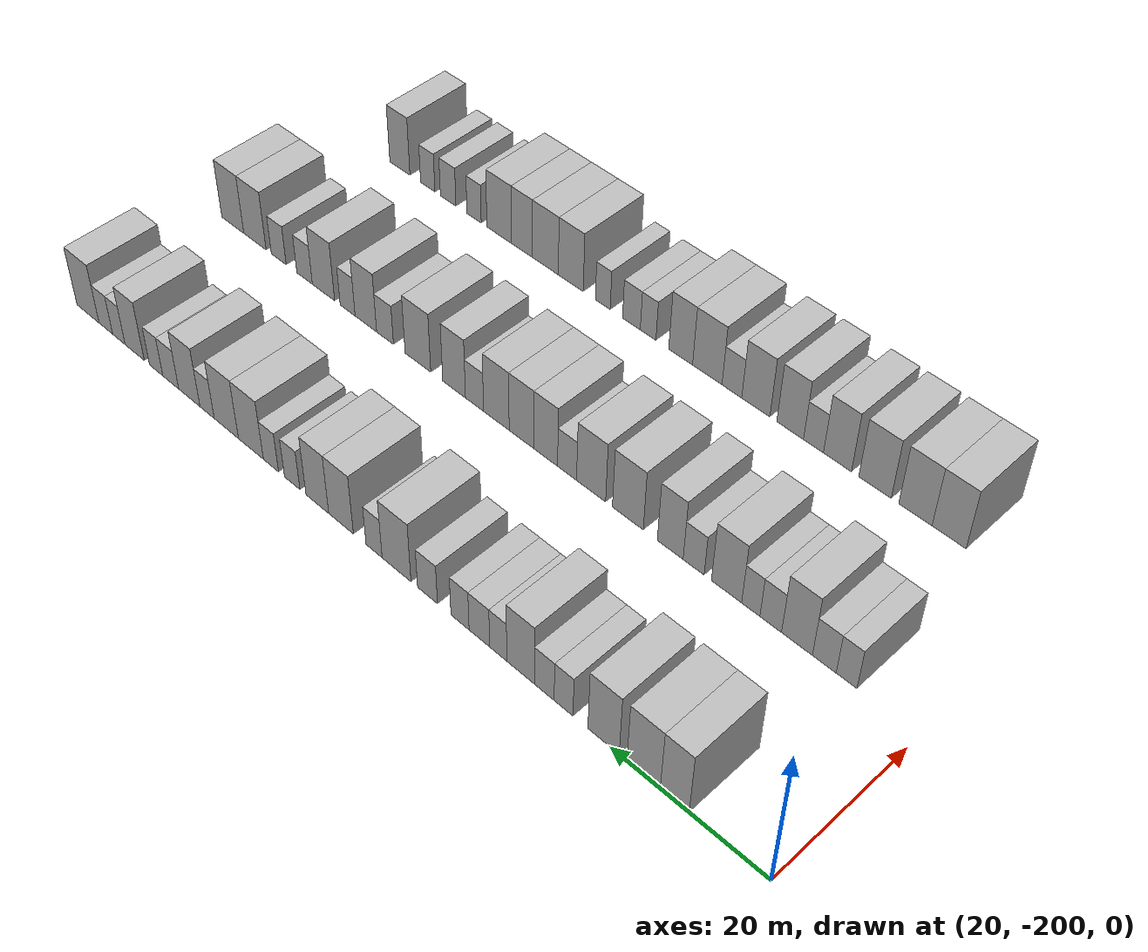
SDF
<sdf version="1.6">
 <world name="default">
  <model name="building_46">
   <static>1</static>
   <pose>25.0000 -188.2648 0 0.000000 0.000000 0.000000</pose>
   <link name="link">
    <pose>0 0 4.50 0 0 0</pose>
    <collision name="collision"><geometry><box><size>10.0000 3.6144 9.0000</size></box></geometry></collision>
    <visual name="visual">
     <cast_shadows>0</cast_shadows>
     <geometry><box><size>10.0000 3.6144 9.0000</size></box></geometry>
     <material>
      <script>
       <uri>model://HANNAS_wall/materials/scripts</uri>
       <uri>model://HANNAS_wall/materials/textures</uri>
       <name>vrc/HANNAS_wall</name>
      </script>
     </material>
    </visual>
   </link>
  </model>
  <model name="building_47">
   <static>1</static>
   <pose>25.0000 -184.3239 0 0.000000 0.000000 0.000000</pose>
   <link name="link">
    <pose>0 0 4.50 0 0 0</pose>
    <collision name="collision"><geometry><box><size>10.0000 4.2674 9.0000</size></box></geometry></collision>
    <visual name="visual">
     <cast_shadows>0</cast_shadows>
     <geometry><box><size>10.0000 4.2674 9.0000</size></box></geometry>
     <material>
      <script>
       <uri>model://HANNAS_wall/materials/scripts</uri>
       <uri>model://HANNAS_wall/materials/textures</uri>
       <name>vrc/HANNAS_wall</name>
      </script>
     </material>
    </visual>
   </link>
  </model>
  <model name="building_48">
   <static>1</static>
   <pose>25.0000 -179.1286 0 0.000000 0.000000 0.000000</pose>
   <link name="link">
    <pose>0 0 4.50 0 0 0</pose>
    <collision name="collision"><geometry><box><size>10.0000 4.1231 9.0000</size></box></geometry></collision>
    <visual name="visual">
     <cast_shadows>0</cast_shadows>
     <geometry><box><size>10.0000 4.1231 9.0000</size></box></geometry>
     <material>
      <script>
       <uri>model://HANNAS_wall/materials/scripts</uri>
       <uri>model://HANNAS_wall/materials/textures</uri>
       <name>vrc/HANNAS_wall</name>
      </script>
     </material>
    </visual>
   </link>
  </model>
  <model name="building_49">
   <static>1</static>
   <pose>25.0000 -173.7870 0 0.000000 0.000000 0.000000</pose>
   <link name="link">
    <pose>0 0 3.00 0 0 0</pose>
    <collision name="collision"><geometry><box><size>10.0000 2.5602 6.0000</size></box></geometry></collision>
    <visual name="visual">
     <cast_shadows>0</cast_shadows>
     <geometry><box><size>10.0000 2.5602 6.0000</size></box></geometry>
     <material>
      <script>
       <uri>model://HANNAS_wall/materials/scripts</uri>
       <uri>model://HANNAS_wall/materials/textures</uri>
       <name>vrc/HANNAS_wall</name>
      </script>
     </material>
    </visual>
   </link>
  </model>
  <model name="building_50">
   <static>1</static>
   <pose>25.0000 -171.1519 0 0.000000 0.000000 0.000000</pose>
   <link name="link">
    <pose>0 0 3.00 0 0 0</pose>
    <collision name="collision"><geometry><box><size>10.0000 2.7098 6.0000</size></box></geometry></collision>
    <visual name="visual">
     <cast_shadows>0</cast_shadows>
     <geometry><box><size>10.0000 2.7098 6.0000</size></box></geometry>
     <material>
      <script>
       <uri>model://HANNAS_wall/materials/scripts</uri>
       <uri>model://HANNAS_wall/materials/textures</uri>
       <name>vrc/HANNAS_wall</name>
      </script>
     </material>
    </visual>
   </link>
  </model>
  <model name="building_51">
   <static>1</static>
   <pose>25.0000 -167.8663 0 0.000000 0.000000 0.000000</pose>
   <link name="link">
    <pose>0 0 4.50 0 0 0</pose>
    <collision name="collision"><geometry><box><size>10.0000 3.8616 9.0000</size></box></geometry></collision>
    <visual name="visual">
     <cast_shadows>0</cast_shadows>
     <geometry><box><size>10.0000 3.8616 9.0000</size></box></geometry>
     <material>
      <script>
       <uri>model://HANNAS_wall/materials/scripts</uri>
       <uri>model://HANNAS_wall/materials/textures</uri>
       <name>vrc/HANNAS_wall</name>
      </script>
     </material>
    </visual>
   </link>
  </model>
  <model name="building_52">
   <static>1</static>
   <pose>25.0000 -164.7134 0 0.000000 0.000000 0.000000</pose>
   <link name="link">
    <pose>0 0 3.00 0 0 0</pose>
    <collision name="collision"><geometry><box><size>10.0000 2.4443 6.0000</size></box></geometry></collision>
    <visual name="visual">
     <cast_shadows>0</cast_shadows>
     <geometry><box><size>10.0000 2.4443 6.0000</size></box></geometry>
     <material>
      <script>
       <uri>model://HANNAS_wall/materials/scripts</uri>
       <uri>model://HANNAS_wall/materials/textures</uri>
       <name>vrc/HANNAS_wall</name>
      </script>
     </material>
    </visual>
   </link>
  </model>
  <model name="building_53">
   <static>1</static>
   <pose>25.0000 -162.0089 0 0.000000 0.000000 0.000000</pose>
   <link name="link">
    <pose>0 0 3.00 0 0 0</pose>
    <collision name="collision"><geometry><box><size>10.0000 2.9646 6.0000</size></box></geometry></collision>
    <visual name="visual">
     <cast_shadows>0</cast_shadows>
     <geometry><box><size>10.0000 2.9646 6.0000</size></box></geometry>
     <material>
      <script>
       <uri>model://HANNAS_wall/materials/scripts</uri>
       <uri>model://HANNAS_wall/materials/textures</uri>
       <name>vrc/HANNAS_wall</name>
      </script>
     </material>
    </visual>
   </link>
  </model>
  <model name="building_54">
   <static>1</static>
   <pose>25.0000 -159.2005 0 0.000000 0.000000 0.000000</pose>
   <link name="link">
    <pose>0 0 3.00 0 0 0</pose>
    <collision name="collision"><geometry><box><size>10.0000 2.6522 6.0000</size></box></geometry></collision>
    <visual name="visual">
     <cast_shadows>0</cast_shadows>
     <geometry><box><size>10.0000 2.6522 6.0000</size></box></geometry>
     <material>
      <script>
       <uri>model://HANNAS_wall/materials/scripts</uri>
       <uri>model://HANNAS_wall/materials/textures</uri>
       <name>vrc/HANNAS_wall</name>
      </script>
     </material>
    </visual>
   </link>
  </model>
  <model name="building_55">
   <static>1</static>
   <pose>25.0000 -154.3801 0 0.000000 0.000000 0.000000</pose>
   <link name="link">
    <pose>0 0 3.00 0 0 0</pose>
    <collision name="collision"><geometry><box><size>10.0000 2.9886 6.0000</size></box></geometry></collision>
    <visual name="visual">
     <cast_shadows>0</cast_shadows>
     <geometry><box><size>10.0000 2.9886 6.0000</size></box></geometry>
     <material>
      <script>
       <uri>model://HANNAS_wall/materials/scripts</uri>
       <uri>model://HANNAS_wall/materials/textures</uri>
       <name>vrc/HANNAS_wall</name>
      </script>
     </material>
    </visual>
   </link>
  </model>
  <model name="building_56">
   <static>1</static>
   <pose>25.0000 -149.6668 0 0.000000 0.000000 0.000000</pose>
   <link name="link">
    <pose>0 0 4.50 0 0 0</pose>
    <collision name="collision"><geometry><box><size>10.0000 4.4381 9.0000</size></box></geometry></collision>
    <visual name="visual">
     <cast_shadows>0</cast_shadows>
     <geometry><box><size>10.0000 4.4381 9.0000</size></box></geometry>
     <material>
      <script>
       <uri>model://HANNAS_wall/materials/scripts</uri>
       <uri>model://HANNAS_wall/materials/textures</uri>
       <name>vrc/HANNAS_wall</name>
      </script>
     </material>
    </visual>
   </link>
  </model>
  <model name="building_57">
   <static>1</static>
   <pose>25.0000 -146.1863 0 0.000000 0.000000 0.000000</pose>
   <link name="link">
    <pose>0 0 3.00 0 0 0</pose>
    <collision name="collision"><geometry><box><size>10.0000 2.5229 6.0000</size></box></geometry></collision>
    <visual name="visual">
     <cast_shadows>0</cast_shadows>
     <geometry><box><size>10.0000 2.5229 6.0000</size></box></geometry>
     <material>
      <script>
       <uri>model://HANNAS_wall/materials/scripts</uri>
       <uri>model://HANNAS_wall/materials/textures</uri>
       <name>vrc/HANNAS_wall</name>
      </script>
     </material>
    </visual>
   </link>
  </model>
  <model name="building_58">
   <static>1</static>
   <pose>25.0000 -140.9381 0 0.000000 0.000000 0.000000</pose>
   <link name="link">
    <pose>0 0 4.50 0 0 0</pose>
    <collision name="collision"><geometry><box><size>10.0000 3.9737 9.0000</size></box></geometry></collision>
    <visual name="visual">
     <cast_shadows>0</cast_shadows>
     <geometry><box><size>10.0000 3.9737 9.0000</size></box></geometry>
     <material>
      <script>
       <uri>model://HANNAS_wall/materials/scripts</uri>
       <uri>model://HANNAS_wall/materials/textures</uri>
       <name>vrc/HANNAS_wall</name>
      </script>
     </material>
    </visual>
   </link>
  </model>
  <model name="building_59">
   <static>1</static>
   <pose>25.0000 -137.0864 0 0.000000 0.000000 0.000000</pose>
   <link name="link">
    <pose>0 0 4.50 0 0 0</pose>
    <collision name="collision"><geometry><box><size>10.0000 3.7296 9.0000</size></box></geometry></collision>
    <visual name="visual">
     <cast_shadows>0</cast_shadows>
     <geometry><box><size>10.0000 3.7296 9.0000</size></box></geometry>
     <material>
      <script>
       <uri>model://HANNAS_wall/materials/scripts</uri>
       <uri>model://HANNAS_wall/materials/textures</uri>
       <name>vrc/HANNAS_wall</name>
      </script>
     </material>
    </visual>
   </link>
  </model>
  <model name="building_60">
   <static>1</static>
   <pose>25.0000 -132.9368 0 0.000000 0.000000 0.000000</pose>
   <link name="link">
    <pose>0 0 3.00 0 0 0</pose>
    <collision name="collision"><geometry><box><size>10.0000 2.5696 6.0000</size></box></geometry></collision>
    <visual name="visual">
     <cast_shadows>0</cast_shadows>
     <geometry><box><size>10.0000 2.5696 6.0000</size></box></geometry>
     <material>
      <script>
       <uri>model://HANNAS_wall/materials/scripts</uri>
       <uri>model://HANNAS_wall/materials/textures</uri>
       <name>vrc/HANNAS_wall</name>
      </script>
     </material>
    </visual>
   </link>
  </model>
  <model name="building_61">
   <static>1</static>
   <pose>25.0000 -129.3581 0 0.000000 0.000000 0.000000</pose>
   <link name="link">
    <pose>0 0 3.00 0 0 0</pose>
    <collision name="collision"><geometry><box><size>10.0000 2.5878 6.0000</size></box></geometry></collision>
    <visual name="visual">
     <cast_shadows>0</cast_shadows>
     <geometry><box><size>10.0000 2.5878 6.0000</size></box></geometry>
     <material>
      <script>
       <uri>model://HANNAS_wall/materials/scripts</uri>
       <uri>model://HANNAS_wall/materials/textures</uri>
       <name>vrc/HANNAS_wall</name>
      </script>
     </material>
    </visual>
   </link>
  </model>
  <model name="building_62">
   <static>1</static>
   <pose>25.0000 -125.9078 0 0.000000 0.000000 0.000000</pose>
   <link name="link">
    <pose>0 0 4.50 0 0 0</pose>
    <collision name="collision"><geometry><box><size>10.0000 4.3130 9.0000</size></box></geometry></collision>
    <visual name="visual">
     <cast_shadows>0</cast_shadows>
     <geometry><box><size>10.0000 4.3130 9.0000</size></box></geometry>
     <material>
      <script>
       <uri>model://HANNAS_wall/materials/scripts</uri>
       <uri>model://HANNAS_wall/materials/textures</uri>
       <name>vrc/HANNAS_wall</name>
      </script>
     </material>
    </visual>
   </link>
  </model>
  <model name="building_63">
   <static>1</static>
   <pose>25.0000 -121.6126 0 0.000000 0.000000 0.000000</pose>
   <link name="link">
    <pose>0 0 4.50 0 0 0</pose>
    <collision name="collision"><geometry><box><size>10.0000 4.2773 9.0000</size></box></geometry></collision>
    <visual name="visual">
     <cast_shadows>0</cast_shadows>
     <geometry><box><size>10.0000 4.2773 9.0000</size></box></geometry>
     <material>
      <script>
       <uri>model://HANNAS_wall/materials/scripts</uri>
       <uri>model://HANNAS_wall/materials/textures</uri>
       <name>vrc/HANNAS_wall</name>
      </script>
     </material>
    </visual>
   </link>
  </model>
  <model name="building_64">
   <static>1</static>
   <pose>25.0000 -118.1945 0 0.000000 0.000000 0.000000</pose>
   <link name="link">
    <pose>0 0 3.00 0 0 0</pose>
    <collision name="collision"><geometry><box><size>10.0000 2.5590 6.0000</size></box></geometry></collision>
    <visual name="visual">
     <cast_shadows>0</cast_shadows>
     <geometry><box><size>10.0000 2.5590 6.0000</size></box></geometry>
     <material>
      <script>
       <uri>model://HANNAS_wall/materials/scripts</uri>
       <uri>model://HANNAS_wall/materials/textures</uri>
       <name>vrc/HANNAS_wall</name>
      </script>
     </material>
    </visual>
   </link>
  </model>
  <model name="building_65">
   <static>1</static>
   <pose>25.0000 -114.9759 0 0.000000 0.000000 0.000000</pose>
   <link name="link">
    <pose>0 0 4.50 0 0 0</pose>
    <collision name="collision"><geometry><box><size>10.0000 3.8781 9.0000</size></box></geometry></collision>
    <visual name="visual">
     <cast_shadows>0</cast_shadows>
     <geometry><box><size>10.0000 3.8781 9.0000</size></box></geometry>
     <material>
      <script>
       <uri>model://HANNAS_wall/materials/scripts</uri>
       <uri>model://HANNAS_wall/materials/textures</uri>
       <name>vrc/HANNAS_wall</name>
      </script>
     </material>
    </visual>
   </link>
  </model>
  <model name="building_66">
   <static>1</static>
   <pose>25.0000 -111.5622 0 0.000000 0.000000 0.000000</pose>
   <link name="link">
    <pose>0 0 3.00 0 0 0</pose>
    <collision name="collision"><geometry><box><size>10.0000 2.9492 6.0000</size></box></geometry></collision>
    <visual name="visual">
     <cast_shadows>0</cast_shadows>
     <geometry><box><size>10.0000 2.9492 6.0000</size></box></geometry>
     <material>
      <script>
       <uri>model://HANNAS_wall/materials/scripts</uri>
       <uri>model://HANNAS_wall/materials/textures</uri>
       <name>vrc/HANNAS_wall</name>
      </script>
     </material>
    </visual>
   </link>
  </model>
  <model name="building_67">
   <static>1</static>
   <pose>25.0000 -108.8492 0 0.000000 0.000000 0.000000</pose>
   <link name="link">
    <pose>0 0 3.00 0 0 0</pose>
    <collision name="collision"><geometry><box><size>10.0000 2.4767 6.0000</size></box></geometry></collision>
    <visual name="visual">
     <cast_shadows>0</cast_shadows>
     <geometry><box><size>10.0000 2.4767 6.0000</size></box></geometry>
     <material>
      <script>
       <uri>model://HANNAS_wall/materials/scripts</uri>
       <uri>model://HANNAS_wall/materials/textures</uri>
       <name>vrc/HANNAS_wall</name>
      </script>
     </material>
    </visual>
   </link>
  </model>
  <model name="building_68">
   <static>1</static>
   <pose>25.0000 -104.7848 0 0.000000 0.000000 0.000000</pose>
   <link name="link">
    <pose>0 0 4.50 0 0 0</pose>
    <collision name="collision"><geometry><box><size>10.0000 3.6522 9.0000</size></box></geometry></collision>
    <visual name="visual">
     <cast_shadows>0</cast_shadows>
     <geometry><box><size>10.0000 3.6522 9.0000</size></box></geometry>
     <material>
      <script>
       <uri>model://HANNAS_wall/materials/scripts</uri>
       <uri>model://HANNAS_wall/materials/textures</uri>
       <name>vrc/HANNAS_wall</name>
      </script>
     </material>
    </visual>
   </link>
  </model>
  <model name="building_69">
   <static>1</static>
   <pose>25.0000 -101.7532 0 0.000000 0.000000 0.000000</pose>
   <link name="link">
    <pose>0 0 3.00 0 0 0</pose>
    <collision name="collision"><geometry><box><size>10.0000 2.4108 6.0000</size></box></geometry></collision>
    <visual name="visual">
     <cast_shadows>0</cast_shadows>
     <geometry><box><size>10.0000 2.4108 6.0000</size></box></geometry>
     <material>
      <script>
       <uri>model://HANNAS_wall/materials/scripts</uri>
       <uri>model://HANNAS_wall/materials/textures</uri>
       <name>vrc/HANNAS_wall</name>
      </script>
     </material>
    </visual>
   </link>
  </model>
  <model name="building_70">
   <static>1</static>
   <pose>25.0000 -99.2175 0 0.000000 0.000000 0.000000</pose>
   <link name="link">
    <pose>0 0 3.00 0 0 0</pose>
    <collision name="collision"><geometry><box><size>10.0000 2.6606 6.0000</size></box></geometry></collision>
    <visual name="visual">
     <cast_shadows>0</cast_shadows>
     <geometry><box><size>10.0000 2.6606 6.0000</size></box></geometry>
     <material>
      <script>
       <uri>model://HANNAS_wall/materials/scripts</uri>
       <uri>model://HANNAS_wall/materials/textures</uri>
       <name>vrc/HANNAS_wall</name>
      </script>
     </material>
    </visual>
   </link>
  </model>
  <model name="building_71">
   <static>1</static>
   <pose>25.0000 -95.6917 0 0.000000 0.000000 0.000000</pose>
   <link name="link">
    <pose>0 0 4.50 0 0 0</pose>
    <collision name="collision"><geometry><box><size>10.0000 4.3912 9.0000</size></box></geometry></collision>
    <visual name="visual">
     <cast_shadows>0</cast_shadows>
     <geometry><box><size>10.0000 4.3912 9.0000</size></box></geometry>
     <material>
      <script>
       <uri>model://HANNAS_wall/materials/scripts</uri>
       <uri>model://HANNAS_wall/materials/textures</uri>
       <name>vrc/HANNAS_wall</name>
      </script>
     </material>
    </visual>
   </link>
  </model>
  <model name="building_244">
   <static>1</static>
   <pose>47.0000 -191.0393 0 0.000000 0.000000 0.000000</pose>
   <link name="link">
    <pose>0 0 3.00 0 0 0</pose>
    <collision name="collision"><geometry><box><size>10.0000 2.5971 6.0000</size></box></geometry></collision>
    <visual name="visual">
     <cast_shadows>0</cast_shadows>
     <geometry><box><size>10.0000 2.5971 6.0000</size></box></geometry>
     <material>
      <script>
       <uri>model://HANNAS_wall/materials/scripts</uri>
       <uri>model://HANNAS_wall/materials/textures</uri>
       <name>vrc/HANNAS_wall</name>
      </script>
     </material>
    </visual>
   </link>
  </model>
  <model name="building_245">
   <static>1</static>
   <pose>47.0000 -188.2462 0 0.000000 0.000000 0.000000</pose>
   <link name="link">
    <pose>0 0 3.00 0 0 0</pose>
    <collision name="collision"><geometry><box><size>10.0000 2.9891 6.0000</size></box></geometry></collision>
    <visual name="visual">
     <cast_shadows>0</cast_shadows>
     <geometry><box><size>10.0000 2.9891 6.0000</size></box></geometry>
     <material>
      <script>
       <uri>model://HANNAS_wall/materials/scripts</uri>
       <uri>model://HANNAS_wall/materials/textures</uri>
       <name>vrc/HANNAS_wall</name>
      </script>
     </material>
    </visual>
   </link>
  </model>
  <model name="building_246">
   <static>1</static>
   <pose>47.0000 -184.7642 0 0.000000 0.000000 0.000000</pose>
   <link name="link">
    <pose>0 0 4.50 0 0 0</pose>
    <collision name="collision"><geometry><box><size>10.0000 3.9748 9.0000</size></box></geometry></collision>
    <visual name="visual">
     <cast_shadows>0</cast_shadows>
     <geometry><box><size>10.0000 3.9748 9.0000</size></box></geometry>
     <material>
      <script>
       <uri>model://HANNAS_wall/materials/scripts</uri>
       <uri>model://HANNAS_wall/materials/textures</uri>
       <name>vrc/HANNAS_wall</name>
      </script>
     </material>
    </visual>
   </link>
  </model>
  <model name="building_247">
   <static>1</static>
   <pose>47.0000 -181.3634 0 0.000000 0.000000 0.000000</pose>
   <link name="link">
    <pose>0 0 3.00 0 0 0</pose>
    <collision name="collision"><geometry><box><size>10.0000 2.8268 6.0000</size></box></geometry></collision>
    <visual name="visual">
     <cast_shadows>0</cast_shadows>
     <geometry><box><size>10.0000 2.8268 6.0000</size></box></geometry>
     <material>
      <script>
       <uri>model://HANNAS_wall/materials/scripts</uri>
       <uri>model://HANNAS_wall/materials/textures</uri>
       <name>vrc/HANNAS_wall</name>
      </script>
     </material>
    </visual>
   </link>
  </model>
  <model name="building_248">
   <static>1</static>
   <pose>47.0000 -178.7366 0 0.000000 0.000000 0.000000</pose>
   <link name="link">
    <pose>0 0 3.00 0 0 0</pose>
    <collision name="collision"><geometry><box><size>10.0000 2.4269 6.0000</size></box></geometry></collision>
    <visual name="visual">
     <cast_shadows>0</cast_shadows>
     <geometry><box><size>10.0000 2.4269 6.0000</size></box></geometry>
     <material>
      <script>
       <uri>model://HANNAS_wall/materials/scripts</uri>
       <uri>model://HANNAS_wall/materials/textures</uri>
       <name>vrc/HANNAS_wall</name>
      </script>
     </material>
    </visual>
   </link>
  </model>
  <model name="building_249">
   <static>1</static>
   <pose>47.0000 -175.4846 0 0.000000 0.000000 0.000000</pose>
   <link name="link">
    <pose>0 0 4.50 0 0 0</pose>
    <collision name="collision"><geometry><box><size>10.0000 4.0772 9.0000</size></box></geometry></collision>
    <visual name="visual">
     <cast_shadows>0</cast_shadows>
     <geometry><box><size>10.0000 4.0772 9.0000</size></box></geometry>
     <material>
      <script>
       <uri>model://HANNAS_wall/materials/scripts</uri>
       <uri>model://HANNAS_wall/materials/textures</uri>
       <name>vrc/HANNAS_wall</name>
      </script>
     </material>
    </visual>
   </link>
  </model>
  <model name="building_250">
   <static>1</static>
   <pose>47.0000 -170.9958 0 0.000000 0.000000 0.000000</pose>
   <link name="link">
    <pose>0 0 3.00 0 0 0</pose>
    <collision name="collision"><geometry><box><size>10.0000 2.9004 6.0000</size></box></geometry></collision>
    <visual name="visual">
     <cast_shadows>0</cast_shadows>
     <geometry><box><size>10.0000 2.9004 6.0000</size></box></geometry>
     <material>
      <script>
       <uri>model://HANNAS_wall/materials/scripts</uri>
       <uri>model://HANNAS_wall/materials/textures</uri>
       <name>vrc/HANNAS_wall</name>
      </script>
     </material>
    </visual>
   </link>
  </model>
  <model name="building_251">
   <static>1</static>
   <pose>47.0000 -167.7392 0 0.000000 0.000000 0.000000</pose>
   <link name="link">
    <pose>0 0 4.50 0 0 0</pose>
    <collision name="collision"><geometry><box><size>10.0000 3.6128 9.0000</size></box></geometry></collision>
    <visual name="visual">
     <cast_shadows>0</cast_shadows>
     <geometry><box><size>10.0000 3.6128 9.0000</size></box></geometry>
     <material>
      <script>
       <uri>model://HANNAS_wall/materials/scripts</uri>
       <uri>model://HANNAS_wall/materials/textures</uri>
       <name>vrc/HANNAS_wall</name>
      </script>
     </material>
    </visual>
   </link>
  </model>
  <model name="building_252">
   <static>1</static>
   <pose>47.0000 -161.7004 0 0.000000 0.000000 0.000000</pose>
   <link name="link">
    <pose>0 0 4.50 0 0 0</pose>
    <collision name="collision"><geometry><box><size>10.0000 4.4648 9.0000</size></box></geometry></collision>
    <visual name="visual">
     <cast_shadows>0</cast_shadows>
     <geometry><box><size>10.0000 4.4648 9.0000</size></box></geometry>
     <material>
      <script>
       <uri>model://HANNAS_wall/materials/scripts</uri>
       <uri>model://HANNAS_wall/materials/textures</uri>
       <name>vrc/HANNAS_wall</name>
      </script>
     </material>
    </visual>
   </link>
  </model>
  <model name="building_253">
   <static>1</static>
   <pose>47.0000 -156.3067 0 0.000000 0.000000 0.000000</pose>
   <link name="link">
    <pose>0 0 4.50 0 0 0</pose>
    <collision name="collision"><geometry><box><size>10.0000 4.3226 9.0000</size></box></geometry></collision>
    <visual name="visual">
     <cast_shadows>0</cast_shadows>
     <geometry><box><size>10.0000 4.3226 9.0000</size></box></geometry>
     <material>
      <script>
       <uri>model://HANNAS_wall/materials/scripts</uri>
       <uri>model://HANNAS_wall/materials/textures</uri>
       <name>vrc/HANNAS_wall</name>
      </script>
     </material>
    </visual>
   </link>
  </model>
  <model name="building_254">
   <static>1</static>
   <pose>47.0000 -152.7099 0 0.000000 0.000000 0.000000</pose>
   <link name="link">
    <pose>0 0 3.00 0 0 0</pose>
    <collision name="collision"><geometry><box><size>10.0000 2.8710 6.0000</size></box></geometry></collision>
    <visual name="visual">
     <cast_shadows>0</cast_shadows>
     <geometry><box><size>10.0000 2.8710 6.0000</size></box></geometry>
     <material>
      <script>
       <uri>model://HANNAS_wall/materials/scripts</uri>
       <uri>model://HANNAS_wall/materials/textures</uri>
       <name>vrc/HANNAS_wall</name>
      </script>
     </material>
    </visual>
   </link>
  </model>
  <model name="building_255">
   <static>1</static>
   <pose>47.0000 -149.4534 0 0.000000 0.000000 0.000000</pose>
   <link name="link">
    <pose>0 0 4.50 0 0 0</pose>
    <collision name="collision"><geometry><box><size>10.0000 3.6420 9.0000</size></box></geometry></collision>
    <visual name="visual">
     <cast_shadows>0</cast_shadows>
     <geometry><box><size>10.0000 3.6420 9.0000</size></box></geometry>
     <material>
      <script>
       <uri>model://HANNAS_wall/materials/scripts</uri>
       <uri>model://HANNAS_wall/materials/textures</uri>
       <name>vrc/HANNAS_wall</name>
      </script>
     </material>
    </visual>
   </link>
  </model>
  <model name="building_256">
   <static>1</static>
   <pose>47.0000 -145.7069 0 0.000000 0.000000 0.000000</pose>
   <link name="link">
    <pose>0 0 4.50 0 0 0</pose>
    <collision name="collision"><geometry><box><size>10.0000 3.8508 9.0000</size></box></geometry></collision>
    <visual name="visual">
     <cast_shadows>0</cast_shadows>
     <geometry><box><size>10.0000 3.8508 9.0000</size></box></geometry>
     <material>
      <script>
       <uri>model://HANNAS_wall/materials/scripts</uri>
       <uri>model://HANNAS_wall/materials/textures</uri>
       <name>vrc/HANNAS_wall</name>
      </script>
     </material>
    </visual>
   </link>
  </model>
  <model name="building_257">
   <static>1</static>
   <pose>47.0000 -141.7430 0 0.000000 0.000000 0.000000</pose>
   <link name="link">
    <pose>0 0 4.50 0 0 0</pose>
    <collision name="collision"><geometry><box><size>10.0000 4.0770 9.0000</size></box></geometry></collision>
    <visual name="visual">
     <cast_shadows>0</cast_shadows>
     <geometry><box><size>10.0000 4.0770 9.0000</size></box></geometry>
     <material>
      <script>
       <uri>model://HANNAS_wall/materials/scripts</uri>
       <uri>model://HANNAS_wall/materials/textures</uri>
       <name>vrc/HANNAS_wall</name>
      </script>
     </material>
    </visual>
   </link>
  </model>
  <model name="building_258">
   <static>1</static>
   <pose>47.0000 -138.2399 0 0.000000 0.000000 0.000000</pose>
   <link name="link">
    <pose>0 0 3.00 0 0 0</pose>
    <collision name="collision"><geometry><box><size>10.0000 2.9293 6.0000</size></box></geometry></collision>
    <visual name="visual">
     <cast_shadows>0</cast_shadows>
     <geometry><box><size>10.0000 2.9293 6.0000</size></box></geometry>
     <material>
      <script>
       <uri>model://HANNAS_wall/materials/scripts</uri>
       <uri>model://HANNAS_wall/materials/textures</uri>
       <name>vrc/HANNAS_wall</name>
      </script>
     </material>
    </visual>
   </link>
  </model>
  <model name="building_259">
   <static>1</static>
   <pose>47.0000 -134.9069 0 0.000000 0.000000 0.000000</pose>
   <link name="link">
    <pose>0 0 4.50 0 0 0</pose>
    <collision name="collision"><geometry><box><size>10.0000 3.7366 9.0000</size></box></geometry></collision>
    <visual name="visual">
     <cast_shadows>0</cast_shadows>
     <geometry><box><size>10.0000 3.7366 9.0000</size></box></geometry>
     <material>
      <script>
       <uri>model://HANNAS_wall/materials/scripts</uri>
       <uri>model://HANNAS_wall/materials/textures</uri>
       <name>vrc/HANNAS_wall</name>
      </script>
     </material>
    </visual>
   </link>
  </model>
  <model name="building_260">
   <static>1</static>
   <pose>47.0000 -128.8729 0 0.000000 0.000000 0.000000</pose>
   <link name="link">
    <pose>0 0 4.50 0 0 0</pose>
    <collision name="collision"><geometry><box><size>10.0000 4.3314 9.0000</size></box></geometry></collision>
    <visual name="visual">
     <cast_shadows>0</cast_shadows>
     <geometry><box><size>10.0000 4.3314 9.0000</size></box></geometry>
     <material>
      <script>
       <uri>model://HANNAS_wall/materials/scripts</uri>
       <uri>model://HANNAS_wall/materials/textures</uri>
       <name>vrc/HANNAS_wall</name>
      </script>
     </material>
    </visual>
   </link>
  </model>
  <model name="building_261">
   <static>1</static>
   <pose>47.0000 -123.2479 0 0.000000 0.000000 0.000000</pose>
   <link name="link">
    <pose>0 0 3.00 0 0 0</pose>
    <collision name="collision"><geometry><box><size>10.0000 2.9187 6.0000</size></box></geometry></collision>
    <visual name="visual">
     <cast_shadows>0</cast_shadows>
     <geometry><box><size>10.0000 2.9187 6.0000</size></box></geometry>
     <material>
      <script>
       <uri>model://HANNAS_wall/materials/scripts</uri>
       <uri>model://HANNAS_wall/materials/textures</uri>
       <name>vrc/HANNAS_wall</name>
      </script>
     </material>
    </visual>
   </link>
  </model>
  <model name="building_262">
   <static>1</static>
   <pose>47.0000 -119.8901 0 0.000000 0.000000 0.000000</pose>
   <link name="link">
    <pose>0 0 4.50 0 0 0</pose>
    <collision name="collision"><geometry><box><size>10.0000 3.7970 9.0000</size></box></geometry></collision>
    <visual name="visual">
     <cast_shadows>0</cast_shadows>
     <geometry><box><size>10.0000 3.7970 9.0000</size></box></geometry>
     <material>
      <script>
       <uri>model://HANNAS_wall/materials/scripts</uri>
       <uri>model://HANNAS_wall/materials/textures</uri>
       <name>vrc/HANNAS_wall</name>
      </script>
     </material>
    </visual>
   </link>
  </model>
  <model name="building_263">
   <static>1</static>
   <pose>47.0000 -116.6616 0 0.000000 0.000000 0.000000</pose>
   <link name="link">
    <pose>0 0 3.00 0 0 0</pose>
    <collision name="collision"><geometry><box><size>10.0000 2.6600 6.0000</size></box></geometry></collision>
    <visual name="visual">
     <cast_shadows>0</cast_shadows>
     <geometry><box><size>10.0000 2.6600 6.0000</size></box></geometry>
     <material>
      <script>
       <uri>model://HANNAS_wall/materials/scripts</uri>
       <uri>model://HANNAS_wall/materials/textures</uri>
       <name>vrc/HANNAS_wall</name>
      </script>
     </material>
    </visual>
   </link>
  </model>
  <model name="building_264">
   <static>1</static>
   <pose>47.0000 -112.2980 0 0.000000 0.000000 0.000000</pose>
   <link name="link">
    <pose>0 0 4.50 0 0 0</pose>
    <collision name="collision"><geometry><box><size>10.0000 4.0670 9.0000</size></box></geometry></collision>
    <visual name="visual">
     <cast_shadows>0</cast_shadows>
     <geometry><box><size>10.0000 4.0670 9.0000</size></box></geometry>
     <material>
      <script>
       <uri>model://HANNAS_wall/materials/scripts</uri>
       <uri>model://HANNAS_wall/materials/textures</uri>
       <name>vrc/HANNAS_wall</name>
      </script>
     </material>
    </visual>
   </link>
  </model>
  <model name="building_265">
   <static>1</static>
   <pose>47.0000 -108.8313 0 0.000000 0.000000 0.000000</pose>
   <link name="link">
    <pose>0 0 3.00 0 0 0</pose>
    <collision name="collision"><geometry><box><size>10.0000 2.8665 6.0000</size></box></geometry></collision>
    <visual name="visual">
     <cast_shadows>0</cast_shadows>
     <geometry><box><size>10.0000 2.8665 6.0000</size></box></geometry>
     <material>
      <script>
       <uri>model://HANNAS_wall/materials/scripts</uri>
       <uri>model://HANNAS_wall/materials/textures</uri>
       <name>vrc/HANNAS_wall</name>
      </script>
     </material>
    </visual>
   </link>
  </model>
  <model name="building_266">
   <static>1</static>
   <pose>47.0000 -104.0012 0 0.000000 0.000000 0.000000</pose>
   <link name="link">
    <pose>0 0 3.00 0 0 0</pose>
    <collision name="collision"><geometry><box><size>10.0000 2.7937 6.0000</size></box></geometry></collision>
    <visual name="visual">
     <cast_shadows>0</cast_shadows>
     <geometry><box><size>10.0000 2.7937 6.0000</size></box></geometry>
     <material>
      <script>
       <uri>model://HANNAS_wall/materials/scripts</uri>
       <uri>model://HANNAS_wall/materials/textures</uri>
       <name>vrc/HANNAS_wall</name>
      </script>
     </material>
    </visual>
   </link>
  </model>
  <model name="building_267">
   <static>1</static>
   <pose>47.0000 -99.4565 0 0.000000 0.000000 0.000000</pose>
   <link name="link">
    <pose>0 0 4.50 0 0 0</pose>
    <collision name="collision"><geometry><box><size>10.0000 4.2958 9.0000</size></box></geometry></collision>
    <visual name="visual">
     <cast_shadows>0</cast_shadows>
     <geometry><box><size>10.0000 4.2958 9.0000</size></box></geometry>
     <material>
      <script>
       <uri>model://HANNAS_wall/materials/scripts</uri>
       <uri>model://HANNAS_wall/materials/textures</uri>
       <name>vrc/HANNAS_wall</name>
      </script>
     </material>
    </visual>
   </link>
  </model>
  <model name="building_268">
   <static>1</static>
   <pose>47.0000 -95.1533 0 0.000000 0.000000 0.000000</pose>
   <link name="link">
    <pose>0 0 4.50 0 0 0</pose>
    <collision name="collision"><geometry><box><size>10.0000 4.3105 9.0000</size></box></geometry></collision>
    <visual name="visual">
     <cast_shadows>0</cast_shadows>
     <geometry><box><size>10.0000 4.3105 9.0000</size></box></geometry>
     <material>
      <script>
       <uri>model://HANNAS_wall/materials/scripts</uri>
       <uri>model://HANNAS_wall/materials/textures</uri>
       <name>vrc/HANNAS_wall</name>
      </script>
     </material>
    </visual>
   </link>
  </model>
  <model name="building_435">
   <static>1</static>
   <pose>69.0000 -187.1433 0 0.000000 0.000000 0.000000</pose>
   <link name="link">
    <pose>0 0 4.50 0 0 0</pose>
    <collision name="collision"><geometry><box><size>10.0000 4.3837 9.0000</size></box></geometry></collision>
    <visual name="visual">
     <cast_shadows>0</cast_shadows>
     <geometry><box><size>10.0000 4.3837 9.0000</size></box></geometry>
     <material>
      <script>
       <uri>model://HANNAS_wall/materials/scripts</uri>
       <uri>model://HANNAS_wall/materials/textures</uri>
       <name>vrc/HANNAS_wall</name>
      </script>
     </material>
    </visual>
   </link>
  </model>
  <model name="building_436">
   <static>1</static>
   <pose>69.0000 -182.7627 0 0.000000 0.000000 0.000000</pose>
   <link name="link">
    <pose>0 0 4.50 0 0 0</pose>
    <collision name="collision"><geometry><box><size>10.0000 4.3775 9.0000</size></box></geometry></collision>
    <visual name="visual">
     <cast_shadows>0</cast_shadows>
     <geometry><box><size>10.0000 4.3775 9.0000</size></box></geometry>
     <material>
      <script>
       <uri>model://HANNAS_wall/materials/scripts</uri>
       <uri>model://HANNAS_wall/materials/textures</uri>
       <name>vrc/HANNAS_wall</name>
      </script>
     </material>
    </visual>
   </link>
  </model>
  <model name="building_437">
   <static>1</static>
   <pose>69.0000 -177.3852 0 0.000000 0.000000 0.000000</pose>
   <link name="link">
    <pose>0 0 4.50 0 0 0</pose>
    <collision name="collision"><geometry><box><size>10.0000 4.3774 9.0000</size></box></geometry></collision>
    <visual name="visual">
     <cast_shadows>0</cast_shadows>
     <geometry><box><size>10.0000 4.3774 9.0000</size></box></geometry>
     <material>
      <script>
       <uri>model://HANNAS_wall/materials/scripts</uri>
       <uri>model://HANNAS_wall/materials/textures</uri>
       <name>vrc/HANNAS_wall</name>
      </script>
     </material>
    </visual>
   </link>
  </model>
  <model name="building_438">
   <static>1</static>
   <pose>69.0000 -172.2606 0 0.000000 0.000000 0.000000</pose>
   <link name="link">
    <pose>0 0 4.50 0 0 0</pose>
    <collision name="collision"><geometry><box><size>10.0000 3.8718 9.0000</size></box></geometry></collision>
    <visual name="visual">
     <cast_shadows>0</cast_shadows>
     <geometry><box><size>10.0000 3.8718 9.0000</size></box></geometry>
     <material>
      <script>
       <uri>model://HANNAS_wall/materials/scripts</uri>
       <uri>model://HANNAS_wall/materials/textures</uri>
       <name>vrc/HANNAS_wall</name>
      </script>
     </material>
    </visual>
   </link>
  </model>
  <model name="building_439">
   <static>1</static>
   <pose>69.0000 -168.9216 0 0.000000 0.000000 0.000000</pose>
   <link name="link">
    <pose>0 0 3.00 0 0 0</pose>
    <collision name="collision"><geometry><box><size>10.0000 2.8063 6.0000</size></box></geometry></collision>
    <visual name="visual">
     <cast_shadows>0</cast_shadows>
     <geometry><box><size>10.0000 2.8063 6.0000</size></box></geometry>
     <material>
      <script>
       <uri>model://HANNAS_wall/materials/scripts</uri>
       <uri>model://HANNAS_wall/materials/textures</uri>
       <name>vrc/HANNAS_wall</name>
      </script>
     </material>
    </visual>
   </link>
  </model>
  <model name="building_440">
   <static>1</static>
   <pose>69.0000 -165.6124 0 0.000000 0.000000 0.000000</pose>
   <link name="link">
    <pose>0 0 4.50 0 0 0</pose>
    <collision name="collision"><geometry><box><size>10.0000 3.8121 9.0000</size></box></geometry></collision>
    <visual name="visual">
     <cast_shadows>0</cast_shadows>
     <geometry><box><size>10.0000 3.8121 9.0000</size></box></geometry>
     <material>
      <script>
       <uri>model://HANNAS_wall/materials/scripts</uri>
       <uri>model://HANNAS_wall/materials/textures</uri>
       <name>vrc/HANNAS_wall</name>
      </script>
     </material>
    </visual>
   </link>
  </model>
  <model name="building_441">
   <static>1</static>
   <pose>69.0000 -160.6498 0 0.000000 0.000000 0.000000</pose>
   <link name="link">
    <pose>0 0 4.50 0 0 0</pose>
    <collision name="collision"><geometry><box><size>10.0000 4.1131 9.0000</size></box></geometry></collision>
    <visual name="visual">
     <cast_shadows>0</cast_shadows>
     <geometry><box><size>10.0000 4.1131 9.0000</size></box></geometry>
     <material>
      <script>
       <uri>model://HANNAS_wall/materials/scripts</uri>
       <uri>model://HANNAS_wall/materials/textures</uri>
       <name>vrc/HANNAS_wall</name>
      </script>
     </material>
    </visual>
   </link>
  </model>
  <model name="building_442">
   <static>1</static>
   <pose>69.0000 -157.1275 0 0.000000 0.000000 0.000000</pose>
   <link name="link">
    <pose>0 0 3.00 0 0 0</pose>
    <collision name="collision"><geometry><box><size>10.0000 2.9314 6.0000</size></box></geometry></collision>
    <visual name="visual">
     <cast_shadows>0</cast_shadows>
     <geometry><box><size>10.0000 2.9314 6.0000</size></box></geometry>
     <material>
      <script>
       <uri>model://HANNAS_wall/materials/scripts</uri>
       <uri>model://HANNAS_wall/materials/textures</uri>
       <name>vrc/HANNAS_wall</name>
      </script>
     </material>
    </visual>
   </link>
  </model>
  <model name="building_443">
   <static>1</static>
   <pose>69.0000 -153.4380 0 0.000000 0.000000 0.000000</pose>
   <link name="link">
    <pose>0 0 4.50 0 0 0</pose>
    <collision name="collision"><geometry><box><size>10.0000 4.4476 9.0000</size></box></geometry></collision>
    <visual name="visual">
     <cast_shadows>0</cast_shadows>
     <geometry><box><size>10.0000 4.4476 9.0000</size></box></geometry>
     <material>
      <script>
       <uri>model://HANNAS_wall/materials/scripts</uri>
       <uri>model://HANNAS_wall/materials/textures</uri>
       <name>vrc/HANNAS_wall</name>
      </script>
     </material>
    </visual>
   </link>
  </model>
  <model name="building_444">
   <static>1</static>
   <pose>69.0000 -149.3786 0 0.000000 0.000000 0.000000</pose>
   <link name="link">
    <pose>0 0 4.50 0 0 0</pose>
    <collision name="collision"><geometry><box><size>10.0000 3.6713 9.0000</size></box></geometry></collision>
    <visual name="visual">
     <cast_shadows>0</cast_shadows>
     <geometry><box><size>10.0000 3.6713 9.0000</size></box></geometry>
     <material>
      <script>
       <uri>model://HANNAS_wall/materials/scripts</uri>
       <uri>model://HANNAS_wall/materials/textures</uri>
       <name>vrc/HANNAS_wall</name>
      </script>
     </material>
    </visual>
   </link>
  </model>
  <model name="building_445">
   <static>1</static>
   <pose>69.0000 -144.3142 0 0.000000 0.000000 0.000000</pose>
   <link name="link">
    <pose>0 0 3.00 0 0 0</pose>
    <collision name="collision"><geometry><box><size>10.0000 2.4574 6.0000</size></box></geometry></collision>
    <visual name="visual">
     <cast_shadows>0</cast_shadows>
     <geometry><box><size>10.0000 2.4574 6.0000</size></box></geometry>
     <material>
      <script>
       <uri>model://HANNAS_wall/materials/scripts</uri>
       <uri>model://HANNAS_wall/materials/textures</uri>
       <name>vrc/HANNAS_wall</name>
      </script>
     </material>
    </visual>
   </link>
  </model>
  <model name="building_446">
   <static>1</static>
   <pose>69.0000 -141.6741 0 0.000000 0.000000 0.000000</pose>
   <link name="link">
    <pose>0 0 3.00 0 0 0</pose>
    <collision name="collision"><geometry><box><size>10.0000 2.8227 6.0000</size></box></geometry></collision>
    <visual name="visual">
     <cast_shadows>0</cast_shadows>
     <geometry><box><size>10.0000 2.8227 6.0000</size></box></geometry>
     <material>
      <script>
       <uri>model://HANNAS_wall/materials/scripts</uri>
       <uri>model://HANNAS_wall/materials/textures</uri>
       <name>vrc/HANNAS_wall</name>
      </script>
     </material>
    </visual>
   </link>
  </model>
  <model name="building_447">
   <static>1</static>
   <pose>69.0000 -137.0579 0 0.000000 0.000000 0.000000</pose>
   <link name="link">
    <pose>0 0 3.00 0 0 0</pose>
    <collision name="collision"><geometry><box><size>10.0000 2.4098 6.0000</size></box></geometry></collision>
    <visual name="visual">
     <cast_shadows>0</cast_shadows>
     <geometry><box><size>10.0000 2.4098 6.0000</size></box></geometry>
     <material>
      <script>
       <uri>model://HANNAS_wall/materials/scripts</uri>
       <uri>model://HANNAS_wall/materials/textures</uri>
       <name>vrc/HANNAS_wall</name>
      </script>
     </material>
    </visual>
   </link>
  </model>
  <model name="building_448">
   <static>1</static>
   <pose>69.0000 -131.7720 0 0.000000 0.000000 0.000000</pose>
   <link name="link">
    <pose>0 0 4.50 0 0 0</pose>
    <collision name="collision"><geometry><box><size>10.0000 4.1620 9.0000</size></box></geometry></collision>
    <visual name="visual">
     <cast_shadows>0</cast_shadows>
     <geometry><box><size>10.0000 4.1620 9.0000</size></box></geometry>
     <material>
      <script>
       <uri>model://HANNAS_wall/materials/scripts</uri>
       <uri>model://HANNAS_wall/materials/textures</uri>
       <name>vrc/HANNAS_wall</name>
      </script>
     </material>
    </visual>
   </link>
  </model>
  <model name="building_449">
   <static>1</static>
   <pose>69.0000 -127.4992 0 0.000000 0.000000 0.000000</pose>
   <link name="link">
    <pose>0 0 4.50 0 0 0</pose>
    <collision name="collision"><geometry><box><size>10.0000 4.3834 9.0000</size></box></geometry></collision>
    <visual name="visual">
     <cast_shadows>0</cast_shadows>
     <geometry><box><size>10.0000 4.3834 9.0000</size></box></geometry>
     <material>
      <script>
       <uri>model://HANNAS_wall/materials/scripts</uri>
       <uri>model://HANNAS_wall/materials/textures</uri>
       <name>vrc/HANNAS_wall</name>
      </script>
     </material>
    </visual>
   </link>
  </model>
  <model name="building_450">
   <static>1</static>
   <pose>69.0000 -123.4965 0 0.000000 0.000000 0.000000</pose>
   <link name="link">
    <pose>0 0 4.50 0 0 0</pose>
    <collision name="collision"><geometry><box><size>10.0000 3.6220 9.0000</size></box></geometry></collision>
    <visual name="visual">
     <cast_shadows>0</cast_shadows>
     <geometry><box><size>10.0000 3.6220 9.0000</size></box></geometry>
     <material>
      <script>
       <uri>model://HANNAS_wall/materials/scripts</uri>
       <uri>model://HANNAS_wall/materials/textures</uri>
       <name>vrc/HANNAS_wall</name>
      </script>
     </material>
    </visual>
   </link>
  </model>
  <model name="building_451">
   <static>1</static>
   <pose>69.0000 -119.5301 0 0.000000 0.000000 0.000000</pose>
   <link name="link">
    <pose>0 0 4.50 0 0 0</pose>
    <collision name="collision"><geometry><box><size>10.0000 4.3110 9.0000</size></box></geometry></collision>
    <visual name="visual">
     <cast_shadows>0</cast_shadows>
     <geometry><box><size>10.0000 4.3110 9.0000</size></box></geometry>
     <material>
      <script>
       <uri>model://HANNAS_wall/materials/scripts</uri>
       <uri>model://HANNAS_wall/materials/textures</uri>
       <name>vrc/HANNAS_wall</name>
      </script>
     </material>
    </visual>
   </link>
  </model>
  <model name="building_452">
   <static>1</static>
   <pose>69.0000 -115.0999 0 0.000000 0.000000 0.000000</pose>
   <link name="link">
    <pose>0 0 3.00 0 0 0</pose>
    <collision name="collision"><geometry><box><size>10.0000 2.5492 6.0000</size></box></geometry></collision>
    <visual name="visual">
     <cast_shadows>0</cast_shadows>
     <geometry><box><size>10.0000 2.5492 6.0000</size></box></geometry>
     <material>
      <script>
       <uri>model://HANNAS_wall/materials/scripts</uri>
       <uri>model://HANNAS_wall/materials/textures</uri>
       <name>vrc/HANNAS_wall</name>
      </script>
     </material>
    </visual>
   </link>
  </model>
  <model name="building_453">
   <static>1</static>
   <pose>69.0000 -110.4090 0 0.000000 0.000000 0.000000</pose>
   <link name="link">
    <pose>0 0 3.00 0 0 0</pose>
    <collision name="collision"><geometry><box><size>10.0000 2.8327 6.0000</size></box></geometry></collision>
    <visual name="visual">
     <cast_shadows>0</cast_shadows>
     <geometry><box><size>10.0000 2.8327 6.0000</size></box></geometry>
     <material>
      <script>
       <uri>model://HANNAS_wall/materials/scripts</uri>
       <uri>model://HANNAS_wall/materials/textures</uri>
       <name>vrc/HANNAS_wall</name>
      </script>
     </material>
    </visual>
   </link>
  </model>
  <model name="building_454">
   <static>1</static>
   <pose>69.0000 -106.6618 0 0.000000 0.000000 0.000000</pose>
   <link name="link">
    <pose>0 0 3.00 0 0 0</pose>
    <collision name="collision"><geometry><box><size>10.0000 2.6616 6.0000</size></box></geometry></collision>
    <visual name="visual">
     <cast_shadows>0</cast_shadows>
     <geometry><box><size>10.0000 2.6616 6.0000</size></box></geometry>
     <material>
      <script>
       <uri>model://HANNAS_wall/materials/scripts</uri>
       <uri>model://HANNAS_wall/materials/textures</uri>
       <name>vrc/HANNAS_wall</name>
      </script>
     </material>
    </visual>
   </link>
  </model>
  <model name="building_455">
   <static>1</static>
   <pose>69.0000 -101.4342 0 0.000000 0.000000 0.000000</pose>
   <link name="link">
    <pose>0 0 4.50 0 0 0</pose>
    <collision name="collision"><geometry><box><size>10.0000 3.7936 9.0000</size></box></geometry></collision>
    <visual name="visual">
     <cast_shadows>0</cast_shadows>
     <geometry><box><size>10.0000 3.7936 9.0000</size></box></geometry>
     <material>
      <script>
       <uri>model://HANNAS_wall/materials/scripts</uri>
       <uri>model://HANNAS_wall/materials/textures</uri>
       <name>vrc/HANNAS_wall</name>
      </script>
     </material>
    </visual>
   </link>
  </model>
 </world>
</sdf>
